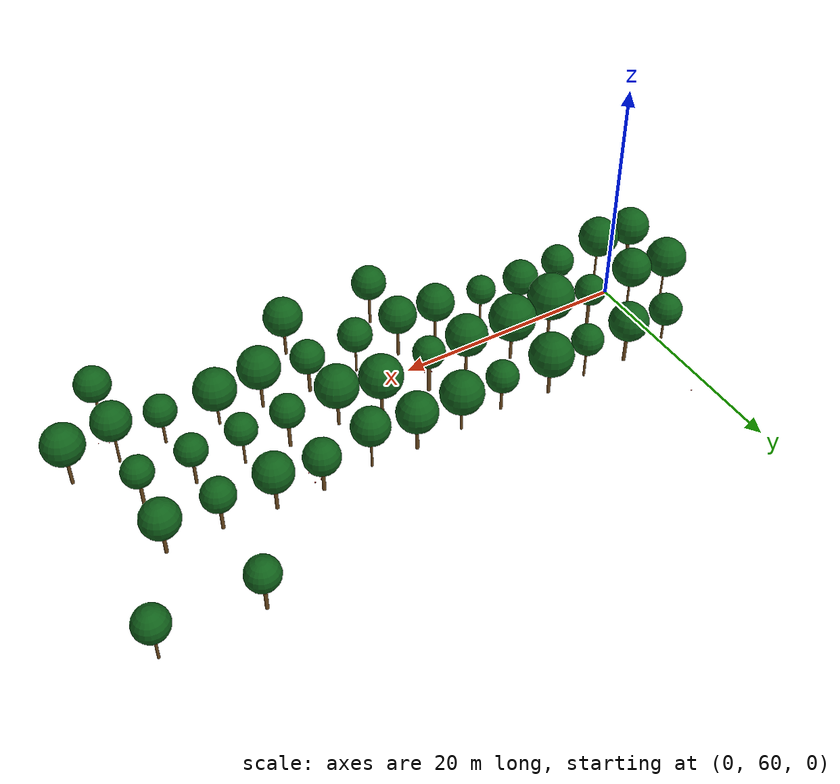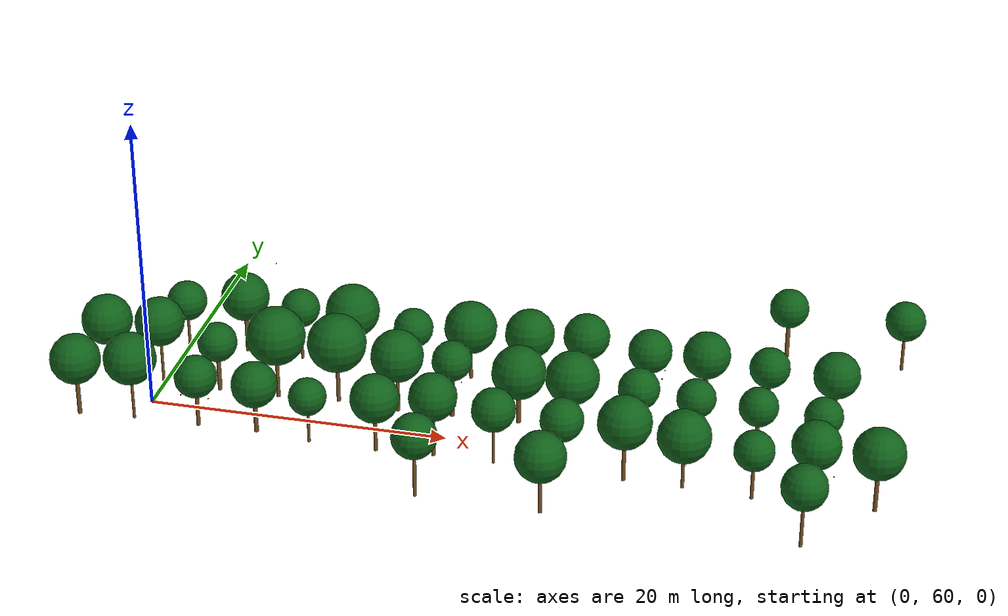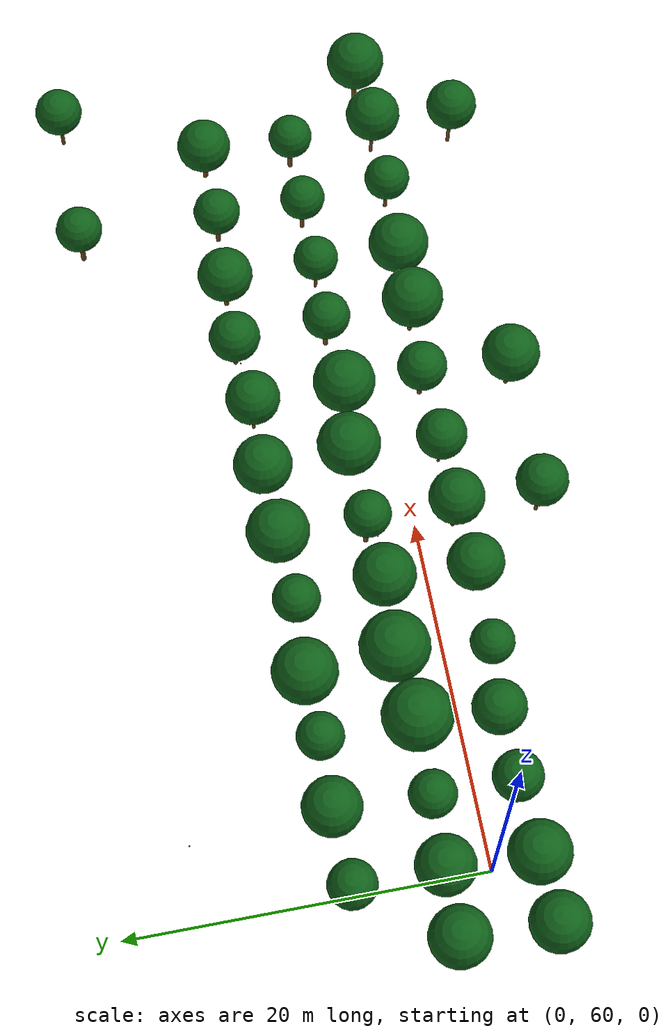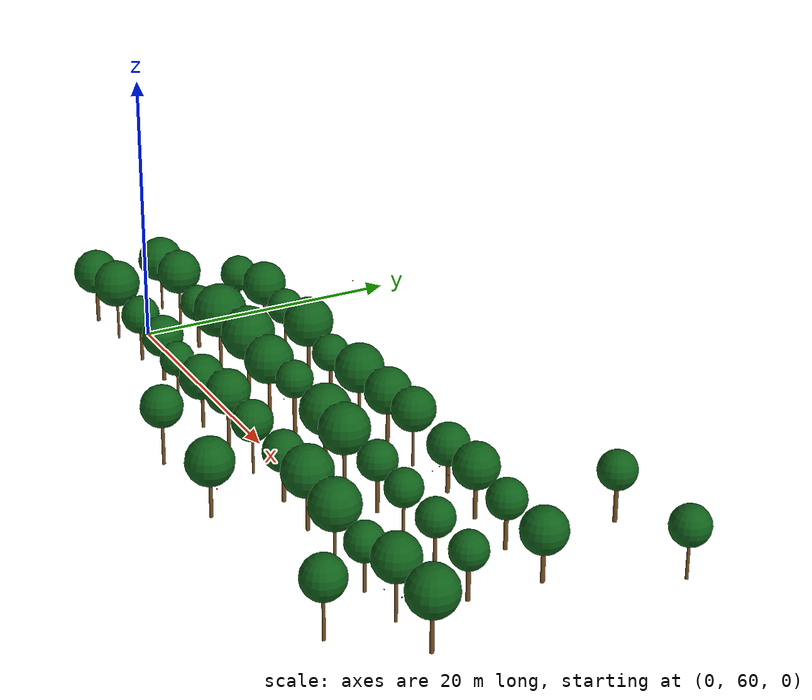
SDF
<sdf version="1.9">
 <world name="cheongsong_orchard">
  <model name="apple_tree_1778">
   <static>true</static>
   <pose>19.77 53.10 0 0 0 0</pose>
   <link name="link">
    <collision name="trunk_col">
     <pose>0 0 1.44 0 0 0</pose>
     <geometry><cylinder><radius>0.114</radius><length>2.87</length></cylinder></geometry>
    </collision>
    <visual name="trunk_vis">
     <pose>0 0 1.44 0 0 0</pose>
     <geometry><cylinder><radius>0.114</radius><length>2.87</length></cylinder></geometry>
     <material><ambient>0.35 0.22 0.08 1</ambient><diffuse>0.45 0.30 0.12 1</diffuse></material>
    </visual>
    <collision name="canopy_col">
     <pose>0 0 4.33 0 0 0</pose>
     <geometry><sphere><radius>1.46</radius></sphere></geometry>
    </collision>
    <visual name="canopy_vis">
     <pose>0 0 4.33 0 0 0</pose>
     <geometry><sphere><radius>1.46</radius></sphere></geometry>
     <material><ambient>0.04 0.28 0.06 1</ambient><diffuse>0.06 0.38 0.10 1</diffuse></material>
    </visual>
   </link>
  </model>
  <model name="apple_tree_1780">
   <static>true</static>
   <pose>27.69 53.07 0 0 0 0</pose>
   <link name="link">
    <collision name="trunk_col">
     <pose>0 0 1.19 0 0 0</pose>
     <geometry><cylinder><radius>0.125</radius><length>2.38</length></cylinder></geometry>
    </collision>
    <visual name="trunk_vis">
     <pose>0 0 1.19 0 0 0</pose>
     <geometry><cylinder><radius>0.125</radius><length>2.38</length></cylinder></geometry>
     <material><ambient>0.35 0.22 0.08 1</ambient><diffuse>0.45 0.30 0.12 1</diffuse></material>
    </visual>
    <collision name="canopy_col">
     <pose>0 0 4.01 0 0 0</pose>
     <geometry><sphere><radius>1.63</radius></sphere></geometry>
    </collision>
    <visual name="canopy_vis">
     <pose>0 0 4.01 0 0 0</pose>
     <geometry><sphere><radius>1.63</radius></sphere></geometry>
     <material><ambient>0.04 0.28 0.06 1</ambient><diffuse>0.06 0.38 0.10 1</diffuse></material>
    </visual>
   </link>
  </model>
  <model name="apple_tree_1784">
   <static>true</static>
   <pose>43.67 53.07 0 0 0 0</pose>
   <link name="link">
    <collision name="trunk_col">
     <pose>0 0 1.38 0 0 0</pose>
     <geometry><cylinder><radius>0.106</radius><length>2.76</length></cylinder></geometry>
    </collision>
    <visual name="trunk_vis">
     <pose>0 0 1.38 0 0 0</pose>
     <geometry><cylinder><radius>0.106</radius><length>2.76</length></cylinder></geometry>
     <material><ambient>0.35 0.22 0.08 1</ambient><diffuse>0.45 0.30 0.12 1</diffuse></material>
    </visual>
    <collision name="canopy_col">
     <pose>0 0 4.21 0 0 0</pose>
     <geometry><sphere><radius>1.44</radius></sphere></geometry>
    </collision>
    <visual name="canopy_vis">
     <pose>0 0 4.21 0 0 0</pose>
     <geometry><sphere><radius>1.44</radius></sphere></geometry>
     <material><ambient>0.04 0.28 0.06 1</ambient><diffuse>0.06 0.38 0.10 1</diffuse></material>
    </visual>
   </link>
  </model>
  <model name="apple_tree_1828">
   <static>true</static>
   <pose>-4.09 57.57 0 0 0 0</pose>
   <link name="link">
    <collision name="trunk_col">
     <pose>0 0 1.22 0 0 0</pose>
     <geometry><cylinder><radius>0.138</radius><length>2.43</length></cylinder></geometry>
    </collision>
    <visual name="trunk_vis">
     <pose>0 0 1.22 0 0 0</pose>
     <geometry><cylinder><radius>0.138</radius><length>2.43</length></cylinder></geometry>
     <material><ambient>0.35 0.22 0.08 1</ambient><diffuse>0.45 0.30 0.12 1</diffuse></material>
    </visual>
    <collision name="canopy_col">
     <pose>0 0 4.09 0 0 0</pose>
     <geometry><sphere><radius>1.66</radius></sphere></geometry>
    </collision>
    <visual name="canopy_vis">
     <pose>0 0 4.09 0 0 0</pose>
     <geometry><sphere><radius>1.66</radius></sphere></geometry>
     <material><ambient>0.04 0.28 0.06 1</ambient><diffuse>0.06 0.38 0.10 1</diffuse></material>
    </visual>
   </link>
  </model>
  <model name="apple_tree_1829">
   <static>true</static>
   <pose>-0.41 57.82 0 0 0 0</pose>
   <link name="link">
    <collision name="trunk_col">
     <pose>0 0 1.37 0 0 0</pose>
     <geometry><cylinder><radius>0.090</radius><length>2.74</length></cylinder></geometry>
    </collision>
    <visual name="trunk_vis">
     <pose>0 0 1.37 0 0 0</pose>
     <geometry><cylinder><radius>0.090</radius><length>2.74</length></cylinder></geometry>
     <material><ambient>0.35 0.22 0.08 1</ambient><diffuse>0.45 0.30 0.12 1</diffuse></material>
    </visual>
    <collision name="canopy_col">
     <pose>0 0 4.46 0 0 0</pose>
     <geometry><sphere><radius>1.73</radius></sphere></geometry>
    </collision>
    <visual name="canopy_vis">
     <pose>0 0 4.46 0 0 0</pose>
     <geometry><sphere><radius>1.73</radius></sphere></geometry>
     <material><ambient>0.04 0.28 0.06 1</ambient><diffuse>0.06 0.38 0.10 1</diffuse></material>
    </visual>
   </link>
  </model>
  <model name="apple_tree_1830">
   <static>true</static>
   <pose>3.96 57.94 0 0 0 0</pose>
   <link name="link">
    <collision name="trunk_col">
     <pose>0 0 1.11 0 0 0</pose>
     <geometry><cylinder><radius>0.123</radius><length>2.23</length></cylinder></geometry>
    </collision>
    <visual name="trunk_vis">
     <pose>0 0 1.11 0 0 0</pose>
     <geometry><cylinder><radius>0.123</radius><length>2.23</length></cylinder></geometry>
     <material><ambient>0.35 0.22 0.08 1</ambient><diffuse>0.45 0.30 0.12 1</diffuse></material>
    </visual>
    <collision name="canopy_col">
     <pose>0 0 3.63 0 0 0</pose>
     <geometry><sphere><radius>1.40</radius></sphere></geometry>
    </collision>
    <visual name="canopy_vis">
     <pose>0 0 3.63 0 0 0</pose>
     <geometry><sphere><radius>1.40</radius></sphere></geometry>
     <material><ambient>0.04 0.28 0.06 1</ambient><diffuse>0.06 0.38 0.10 1</diffuse></material>
    </visual>
   </link>
  </model>
  <model name="apple_tree_1831">
   <static>true</static>
   <pose>7.86 58.07 0 0 0 0</pose>
   <link name="link">
    <collision name="trunk_col">
     <pose>0 0 0.99 0 0 0</pose>
     <geometry><cylinder><radius>0.143</radius><length>1.98</length></cylinder></geometry>
    </collision>
    <visual name="trunk_vis">
     <pose>0 0 0.99 0 0 0</pose>
     <geometry><cylinder><radius>0.143</radius><length>1.98</length></cylinder></geometry>
     <material><ambient>0.35 0.22 0.08 1</ambient><diffuse>0.45 0.30 0.12 1</diffuse></material>
    </visual>
    <collision name="canopy_col">
     <pose>0 0 3.49 0 0 0</pose>
     <geometry><sphere><radius>1.51</radius></sphere></geometry>
    </collision>
    <visual name="canopy_vis">
     <pose>0 0 3.49 0 0 0</pose>
     <geometry><sphere><radius>1.51</radius></sphere></geometry>
     <material><ambient>0.04 0.28 0.06 1</ambient><diffuse>0.06 0.38 0.10 1</diffuse></material>
    </visual>
   </link>
  </model>
  <model name="apple_tree_1832">
   <static>true</static>
   <pose>11.54 57.63 0 0 0 0</pose>
   <link name="link">
    <collision name="trunk_col">
     <pose>0 0 1.06 0 0 0</pose>
     <geometry><cylinder><radius>0.090</radius><length>2.13</length></cylinder></geometry>
    </collision>
    <visual name="trunk_vis">
     <pose>0 0 1.06 0 0 0</pose>
     <geometry><cylinder><radius>0.090</radius><length>2.13</length></cylinder></geometry>
     <material><ambient>0.35 0.22 0.08 1</ambient><diffuse>0.45 0.30 0.12 1</diffuse></material>
    </visual>
    <collision name="canopy_col">
     <pose>0 0 3.35 0 0 0</pose>
     <geometry><sphere><radius>1.23</radius></sphere></geometry>
    </collision>
    <visual name="canopy_vis">
     <pose>0 0 3.35 0 0 0</pose>
     <geometry><sphere><radius>1.23</radius></sphere></geometry>
     <material><ambient>0.04 0.28 0.06 1</ambient><diffuse>0.06 0.38 0.10 1</diffuse></material>
    </visual>
   </link>
  </model>
  <model name="apple_tree_1833">
   <static>true</static>
   <pose>15.99 57.61 0 0 0 0</pose>
   <link name="link">
    <collision name="trunk_col">
     <pose>0 0 1.13 0 0 0</pose>
     <geometry><cylinder><radius>0.120</radius><length>2.26</length></cylinder></geometry>
    </collision>
    <visual name="trunk_vis">
     <pose>0 0 1.13 0 0 0</pose>
     <geometry><cylinder><radius>0.120</radius><length>2.26</length></cylinder></geometry>
     <material><ambient>0.35 0.22 0.08 1</ambient><diffuse>0.45 0.30 0.12 1</diffuse></material>
    </visual>
    <collision name="canopy_col">
     <pose>0 0 3.85 0 0 0</pose>
     <geometry><sphere><radius>1.59</radius></sphere></geometry>
    </collision>
    <visual name="canopy_vis">
     <pose>0 0 3.85 0 0 0</pose>
     <geometry><sphere><radius>1.59</radius></sphere></geometry>
     <material><ambient>0.04 0.28 0.06 1</ambient><diffuse>0.06 0.38 0.10 1</diffuse></material>
    </visual>
   </link>
  </model>
  <model name="apple_tree_1834">
   <static>true</static>
   <pose>19.72 57.89 0 0 0 0</pose>
   <link name="link">
    <collision name="trunk_col">
     <pose>0 0 1.37 0 0 0</pose>
     <geometry><cylinder><radius>0.120</radius><length>2.75</length></cylinder></geometry>
    </collision>
    <visual name="trunk_vis">
     <pose>0 0 1.37 0 0 0</pose>
     <geometry><cylinder><radius>0.120</radius><length>2.75</length></cylinder></geometry>
     <material><ambient>0.35 0.22 0.08 1</ambient><diffuse>0.45 0.30 0.12 1</diffuse></material>
    </visual>
    <collision name="canopy_col">
     <pose>0 0 4.31 0 0 0</pose>
     <geometry><sphere><radius>1.56</radius></sphere></geometry>
    </collision>
    <visual name="canopy_vis">
     <pose>0 0 4.31 0 0 0</pose>
     <geometry><sphere><radius>1.56</radius></sphere></geometry>
     <material><ambient>0.04 0.28 0.06 1</ambient><diffuse>0.06 0.38 0.10 1</diffuse></material>
    </visual>
   </link>
  </model>
  <model name="apple_tree_1835">
   <static>true</static>
   <pose>23.64 57.88 0 0 0 0</pose>
   <link name="link">
    <collision name="trunk_col">
     <pose>0 0 1.24 0 0 0</pose>
     <geometry><cylinder><radius>0.088</radius><length>2.48</length></cylinder></geometry>
    </collision>
    <visual name="trunk_vis">
     <pose>0 0 1.24 0 0 0</pose>
     <geometry><cylinder><radius>0.088</radius><length>2.48</length></cylinder></geometry>
     <material><ambient>0.35 0.22 0.08 1</ambient><diffuse>0.45 0.30 0.12 1</diffuse></material>
    </visual>
    <collision name="canopy_col">
     <pose>0 0 3.91 0 0 0</pose>
     <geometry><sphere><radius>1.42</radius></sphere></geometry>
    </collision>
    <visual name="canopy_vis">
     <pose>0 0 3.91 0 0 0</pose>
     <geometry><sphere><radius>1.42</radius></sphere></geometry>
     <material><ambient>0.04 0.28 0.06 1</ambient><diffuse>0.06 0.38 0.10 1</diffuse></material>
    </visual>
   </link>
  </model>
  <model name="apple_tree_1836">
   <static>true</static>
   <pose>27.97 58.06 0 0 0 0</pose>
   <link name="link">
    <collision name="trunk_col">
     <pose>0 0 1.14 0 0 0</pose>
     <geometry><cylinder><radius>0.142</radius><length>2.28</length></cylinder></geometry>
    </collision>
    <visual name="trunk_vis">
     <pose>0 0 1.14 0 0 0</pose>
     <geometry><cylinder><radius>0.142</radius><length>2.28</length></cylinder></geometry>
     <material><ambient>0.35 0.22 0.08 1</ambient><diffuse>0.45 0.30 0.12 1</diffuse></material>
    </visual>
    <collision name="canopy_col">
     <pose>0 0 3.68 0 0 0</pose>
     <geometry><sphere><radius>1.40</radius></sphere></geometry>
    </collision>
    <visual name="canopy_vis">
     <pose>0 0 3.68 0 0 0</pose>
     <geometry><sphere><radius>1.40</radius></sphere></geometry>
     <material><ambient>0.04 0.28 0.06 1</ambient><diffuse>0.06 0.38 0.10 1</diffuse></material>
    </visual>
   </link>
  </model>
  <model name="apple_tree_1837">
   <static>true</static>
   <pose>31.99 57.80 0 0 0 0</pose>
   <link name="link">
    <collision name="trunk_col">
     <pose>0 0 1.24 0 0 0</pose>
     <geometry><cylinder><radius>0.126</radius><length>2.49</length></cylinder></geometry>
    </collision>
    <visual name="trunk_vis">
     <pose>0 0 1.24 0 0 0</pose>
     <geometry><cylinder><radius>0.126</radius><length>2.49</length></cylinder></geometry>
     <material><ambient>0.35 0.22 0.08 1</ambient><diffuse>0.45 0.30 0.12 1</diffuse></material>
    </visual>
    <collision name="canopy_col">
     <pose>0 0 4.22 0 0 0</pose>
     <geometry><sphere><radius>1.73</radius></sphere></geometry>
    </collision>
    <visual name="canopy_vis">
     <pose>0 0 4.22 0 0 0</pose>
     <geometry><sphere><radius>1.73</radius></sphere></geometry>
     <material><ambient>0.04 0.28 0.06 1</ambient><diffuse>0.06 0.38 0.10 1</diffuse></material>
    </visual>
   </link>
  </model>
  <model name="apple_tree_1838">
   <static>true</static>
   <pose>35.72 57.82 0 0 0 0</pose>
   <link name="link">
    <collision name="trunk_col">
     <pose>0 0 1.01 0 0 0</pose>
     <geometry><cylinder><radius>0.106</radius><length>2.01</length></cylinder></geometry>
    </collision>
    <visual name="trunk_vis">
     <pose>0 0 1.01 0 0 0</pose>
     <geometry><cylinder><radius>0.106</radius><length>2.01</length></cylinder></geometry>
     <material><ambient>0.35 0.22 0.08 1</ambient><diffuse>0.45 0.30 0.12 1</diffuse></material>
    </visual>
    <collision name="canopy_col">
     <pose>0 0 3.73 0 0 0</pose>
     <geometry><sphere><radius>1.71</radius></sphere></geometry>
    </collision>
    <visual name="canopy_vis">
     <pose>0 0 3.73 0 0 0</pose>
     <geometry><sphere><radius>1.71</radius></sphere></geometry>
     <material><ambient>0.04 0.28 0.06 1</ambient><diffuse>0.06 0.38 0.10 1</diffuse></material>
    </visual>
   </link>
  </model>
  <model name="apple_tree_1839">
   <static>true</static>
   <pose>40.09 57.59 0 0 0 0</pose>
   <link name="link">
    <collision name="trunk_col">
     <pose>0 0 1.09 0 0 0</pose>
     <geometry><cylinder><radius>0.112</radius><length>2.17</length></cylinder></geometry>
    </collision>
    <visual name="trunk_vis">
     <pose>0 0 1.09 0 0 0</pose>
     <geometry><cylinder><radius>0.112</radius><length>2.17</length></cylinder></geometry>
     <material><ambient>0.35 0.22 0.08 1</ambient><diffuse>0.45 0.30 0.12 1</diffuse></material>
    </visual>
    <collision name="canopy_col">
     <pose>0 0 3.46 0 0 0</pose>
     <geometry><sphere><radius>1.29</radius></sphere></geometry>
    </collision>
    <visual name="canopy_vis">
     <pose>0 0 3.46 0 0 0</pose>
     <geometry><sphere><radius>1.29</radius></sphere></geometry>
     <material><ambient>0.04 0.28 0.06 1</ambient><diffuse>0.06 0.38 0.10 1</diffuse></material>
    </visual>
   </link>
  </model>
  <model name="apple_tree_1840">
   <static>true</static>
   <pose>43.84 57.69 0 0 0 0</pose>
   <link name="link">
    <collision name="trunk_col">
     <pose>0 0 1.40 0 0 0</pose>
     <geometry><cylinder><radius>0.101</radius><length>2.80</length></cylinder></geometry>
    </collision>
    <visual name="trunk_vis">
     <pose>0 0 1.40 0 0 0</pose>
     <geometry><cylinder><radius>0.101</radius><length>2.80</length></cylinder></geometry>
     <material><ambient>0.35 0.22 0.08 1</ambient><diffuse>0.45 0.30 0.12 1</diffuse></material>
    </visual>
    <collision name="canopy_col">
     <pose>0 0 4.35 0 0 0</pose>
     <geometry><sphere><radius>1.55</radius></sphere></geometry>
    </collision>
    <visual name="canopy_vis">
     <pose>0 0 4.35 0 0 0</pose>
     <geometry><sphere><radius>1.55</radius></sphere></geometry>
     <material><ambient>0.04 0.28 0.06 1</ambient><diffuse>0.06 0.38 0.10 1</diffuse></material>
    </visual>
   </link>
  </model>
  <model name="apple_tree_1841">
   <static>true</static>
   <pose>47.63 57.96 0 0 0 0</pose>
   <link name="link">
    <collision name="trunk_col">
     <pose>0 0 1.23 0 0 0</pose>
     <geometry><cylinder><radius>0.135</radius><length>2.46</length></cylinder></geometry>
    </collision>
    <visual name="trunk_vis">
     <pose>0 0 1.23 0 0 0</pose>
     <geometry><cylinder><radius>0.135</radius><length>2.46</length></cylinder></geometry>
     <material><ambient>0.35 0.22 0.08 1</ambient><diffuse>0.45 0.30 0.12 1</diffuse></material>
    </visual>
    <collision name="canopy_col">
     <pose>0 0 4.11 0 0 0</pose>
     <geometry><sphere><radius>1.65</radius></sphere></geometry>
    </collision>
    <visual name="canopy_vis">
     <pose>0 0 4.11 0 0 0</pose>
     <geometry><sphere><radius>1.65</radius></sphere></geometry>
     <material><ambient>0.04 0.28 0.06 1</ambient><diffuse>0.06 0.38 0.10 1</diffuse></material>
    </visual>
   </link>
  </model>
  <model name="apple_tree_1884">
   <static>true</static>
   <pose>-3.90 62.79 0 0 0 0</pose>
   <link name="link">
    <collision name="trunk_col">
     <pose>0 0 1.25 0 0 0</pose>
     <geometry><cylinder><radius>0.084</radius><length>2.51</length></cylinder></geometry>
    </collision>
    <visual name="trunk_vis">
     <pose>0 0 1.25 0 0 0</pose>
     <geometry><cylinder><radius>0.084</radius><length>2.51</length></cylinder></geometry>
     <material><ambient>0.35 0.22 0.08 1</ambient><diffuse>0.45 0.30 0.12 1</diffuse></material>
    </visual>
    <collision name="canopy_col">
     <pose>0 0 4.20 0 0 0</pose>
     <geometry><sphere><radius>1.70</radius></sphere></geometry>
    </collision>
    <visual name="canopy_vis">
     <pose>0 0 4.20 0 0 0</pose>
     <geometry><sphere><radius>1.70</radius></sphere></geometry>
     <material><ambient>0.04 0.28 0.06 1</ambient><diffuse>0.06 0.38 0.10 1</diffuse></material>
    </visual>
   </link>
  </model>
  <model name="apple_tree_1885">
   <static>true</static>
   <pose>-0.19 62.77 0 0 0 0</pose>
   <link name="link">
    <collision name="trunk_col">
     <pose>0 0 1.44 0 0 0</pose>
     <geometry><cylinder><radius>0.092</radius><length>2.88</length></cylinder></geometry>
    </collision>
    <visual name="trunk_vis">
     <pose>0 0 1.44 0 0 0</pose>
     <geometry><cylinder><radius>0.092</radius><length>2.88</length></cylinder></geometry>
     <material><ambient>0.35 0.22 0.08 1</ambient><diffuse>0.45 0.30 0.12 1</diffuse></material>
    </visual>
    <collision name="canopy_col">
     <pose>0 0 4.53 0 0 0</pose>
     <geometry><sphere><radius>1.65</radius></sphere></geometry>
    </collision>
    <visual name="canopy_vis">
     <pose>0 0 4.53 0 0 0</pose>
     <geometry><sphere><radius>1.65</radius></sphere></geometry>
     <material><ambient>0.04 0.28 0.06 1</ambient><diffuse>0.06 0.38 0.10 1</diffuse></material>
    </visual>
   </link>
  </model>
  <model name="apple_tree_1886">
   <static>true</static>
   <pose>3.85 62.55 0 0 0 0</pose>
   <link name="link">
    <collision name="trunk_col">
     <pose>0 0 1.14 0 0 0</pose>
     <geometry><cylinder><radius>0.141</radius><length>2.29</length></cylinder></geometry>
    </collision>
    <visual name="trunk_vis">
     <pose>0 0 1.14 0 0 0</pose>
     <geometry><cylinder><radius>0.141</radius><length>2.29</length></cylinder></geometry>
     <material><ambient>0.35 0.22 0.08 1</ambient><diffuse>0.45 0.30 0.12 1</diffuse></material>
    </visual>
    <collision name="canopy_col">
     <pose>0 0 3.61 0 0 0</pose>
     <geometry><sphere><radius>1.32</radius></sphere></geometry>
    </collision>
    <visual name="canopy_vis">
     <pose>0 0 3.61 0 0 0</pose>
     <geometry><sphere><radius>1.32</radius></sphere></geometry>
     <material><ambient>0.04 0.28 0.06 1</ambient><diffuse>0.06 0.38 0.10 1</diffuse></material>
    </visual>
   </link>
  </model>
  <model name="apple_tree_1887">
   <static>true</static>
   <pose>7.92 62.55 0 0 0 0</pose>
   <link name="link">
    <collision name="trunk_col">
     <pose>0 0 1.33 0 0 0</pose>
     <geometry><cylinder><radius>0.120</radius><length>2.65</length></cylinder></geometry>
    </collision>
    <visual name="trunk_vis">
     <pose>0 0 1.33 0 0 0</pose>
     <geometry><cylinder><radius>0.120</radius><length>2.65</length></cylinder></geometry>
     <material><ambient>0.35 0.22 0.08 1</ambient><diffuse>0.45 0.30 0.12 1</diffuse></material>
    </visual>
    <collision name="canopy_col">
     <pose>0 0 4.61 0 0 0</pose>
     <geometry><sphere><radius>1.96</radius></sphere></geometry>
    </collision>
    <visual name="canopy_vis">
     <pose>0 0 4.61 0 0 0</pose>
     <geometry><sphere><radius>1.96</radius></sphere></geometry>
     <material><ambient>0.04 0.28 0.06 1</ambient><diffuse>0.06 0.38 0.10 1</diffuse></material>
    </visual>
   </link>
  </model>
  <model name="apple_tree_1888">
   <static>true</static>
   <pose>11.95 62.94 0 0 0 0</pose>
   <link name="link">
    <collision name="trunk_col">
     <pose>0 0 1.21 0 0 0</pose>
     <geometry><cylinder><radius>0.129</radius><length>2.43</length></cylinder></geometry>
    </collision>
    <visual name="trunk_vis">
     <pose>0 0 1.21 0 0 0</pose>
     <geometry><cylinder><radius>0.129</radius><length>2.43</length></cylinder></geometry>
     <material><ambient>0.35 0.22 0.08 1</ambient><diffuse>0.45 0.30 0.12 1</diffuse></material>
    </visual>
    <collision name="canopy_col">
     <pose>0 0 4.38 0 0 0</pose>
     <geometry><sphere><radius>1.95</radius></sphere></geometry>
    </collision>
    <visual name="canopy_vis">
     <pose>0 0 4.38 0 0 0</pose>
     <geometry><sphere><radius>1.95</radius></sphere></geometry>
     <material><ambient>0.04 0.28 0.06 1</ambient><diffuse>0.06 0.38 0.10 1</diffuse></material>
    </visual>
   </link>
  </model>
  <model name="apple_tree_1889">
   <static>true</static>
   <pose>16.10 62.64 0 0 0 0</pose>
   <link name="link">
    <collision name="trunk_col">
     <pose>0 0 1.20 0 0 0</pose>
     <geometry><cylinder><radius>0.118</radius><length>2.39</length></cylinder></geometry>
    </collision>
    <visual name="trunk_vis">
     <pose>0 0 1.20 0 0 0</pose>
     <geometry><cylinder><radius>0.118</radius><length>2.39</length></cylinder></geometry>
     <material><ambient>0.35 0.22 0.08 1</ambient><diffuse>0.45 0.30 0.12 1</diffuse></material>
    </visual>
    <collision name="canopy_col">
     <pose>0 0 4.13 0 0 0</pose>
     <geometry><sphere><radius>1.74</radius></sphere></geometry>
    </collision>
    <visual name="canopy_vis">
     <pose>0 0 4.13 0 0 0</pose>
     <geometry><sphere><radius>1.74</radius></sphere></geometry>
     <material><ambient>0.04 0.28 0.06 1</ambient><diffuse>0.06 0.38 0.10 1</diffuse></material>
    </visual>
   </link>
  </model>
  <model name="apple_tree_1890">
   <static>true</static>
   <pose>19.71 62.85 0 0 0 0</pose>
   <link name="link">
    <collision name="trunk_col">
     <pose>0 0 1.40 0 0 0</pose>
     <geometry><cylinder><radius>0.146</radius><length>2.80</length></cylinder></geometry>
    </collision>
    <visual name="trunk_vis">
     <pose>0 0 1.40 0 0 0</pose>
     <geometry><cylinder><radius>0.146</radius><length>2.80</length></cylinder></geometry>
     <material><ambient>0.35 0.22 0.08 1</ambient><diffuse>0.45 0.30 0.12 1</diffuse></material>
    </visual>
    <collision name="canopy_col">
     <pose>0 0 4.12 0 0 0</pose>
     <geometry><sphere><radius>1.32</radius></sphere></geometry>
    </collision>
    <visual name="canopy_vis">
     <pose>0 0 4.12 0 0 0</pose>
     <geometry><sphere><radius>1.32</radius></sphere></geometry>
     <material><ambient>0.04 0.28 0.06 1</ambient><diffuse>0.06 0.38 0.10 1</diffuse></material>
    </visual>
   </link>
  </model>
  <model name="apple_tree_1891">
   <static>true</static>
   <pose>24.10 63.01 0 0 0 0</pose>
   <link name="link">
    <collision name="trunk_col">
     <pose>0 0 0.99 0 0 0</pose>
     <geometry><cylinder><radius>0.145</radius><length>1.98</length></cylinder></geometry>
    </collision>
    <visual name="trunk_vis">
     <pose>0 0 0.99 0 0 0</pose>
     <geometry><cylinder><radius>0.145</radius><length>1.98</length></cylinder></geometry>
     <material><ambient>0.35 0.22 0.08 1</ambient><diffuse>0.45 0.30 0.12 1</diffuse></material>
    </visual>
    <collision name="canopy_col">
     <pose>0 0 3.76 0 0 0</pose>
     <geometry><sphere><radius>1.78</radius></sphere></geometry>
    </collision>
    <visual name="canopy_vis">
     <pose>0 0 3.76 0 0 0</pose>
     <geometry><sphere><radius>1.78</radius></sphere></geometry>
     <material><ambient>0.04 0.28 0.06 1</ambient><diffuse>0.06 0.38 0.10 1</diffuse></material>
    </visual>
   </link>
  </model>
  <model name="apple_tree_1892">
   <static>true</static>
   <pose>27.71 62.57 0 0 0 0</pose>
   <link name="link">
    <collision name="trunk_col">
     <pose>0 0 1.17 0 0 0</pose>
     <geometry><cylinder><radius>0.129</radius><length>2.34</length></cylinder></geometry>
    </collision>
    <visual name="trunk_vis">
     <pose>0 0 1.17 0 0 0</pose>
     <geometry><cylinder><radius>0.129</radius><length>2.34</length></cylinder></geometry>
     <material><ambient>0.35 0.22 0.08 1</ambient><diffuse>0.45 0.30 0.12 1</diffuse></material>
    </visual>
    <collision name="canopy_col">
     <pose>0 0 4.09 0 0 0</pose>
     <geometry><sphere><radius>1.75</radius></sphere></geometry>
    </collision>
    <visual name="canopy_vis">
     <pose>0 0 4.09 0 0 0</pose>
     <geometry><sphere><radius>1.75</radius></sphere></geometry>
     <material><ambient>0.04 0.28 0.06 1</ambient><diffuse>0.06 0.38 0.10 1</diffuse></material>
    </visual>
   </link>
  </model>
  <model name="apple_tree_1893">
   <static>true</static>
   <pose>31.99 62.74 0 0 0 0</pose>
   <link name="link">
    <collision name="trunk_col">
     <pose>0 0 1.21 0 0 0</pose>
     <geometry><cylinder><radius>0.139</radius><length>2.41</length></cylinder></geometry>
    </collision>
    <visual name="trunk_vis">
     <pose>0 0 1.21 0 0 0</pose>
     <geometry><cylinder><radius>0.139</radius><length>2.41</length></cylinder></geometry>
     <material><ambient>0.35 0.22 0.08 1</ambient><diffuse>0.45 0.30 0.12 1</diffuse></material>
    </visual>
    <collision name="canopy_col">
     <pose>0 0 3.76 0 0 0</pose>
     <geometry><sphere><radius>1.35</radius></sphere></geometry>
    </collision>
    <visual name="canopy_vis">
     <pose>0 0 3.76 0 0 0</pose>
     <geometry><sphere><radius>1.35</radius></sphere></geometry>
     <material><ambient>0.04 0.28 0.06 1</ambient><diffuse>0.06 0.38 0.10 1</diffuse></material>
    </visual>
   </link>
  </model>
  <model name="apple_tree_1894">
   <static>true</static>
   <pose>35.70 62.62 0 0 0 0</pose>
   <link name="link">
    <collision name="trunk_col">
     <pose>0 0 1.18 0 0 0</pose>
     <geometry><cylinder><radius>0.098</radius><length>2.37</length></cylinder></geometry>
    </collision>
    <visual name="trunk_vis">
     <pose>0 0 1.18 0 0 0</pose>
     <geometry><cylinder><radius>0.098</radius><length>2.37</length></cylinder></geometry>
     <material><ambient>0.35 0.22 0.08 1</ambient><diffuse>0.45 0.30 0.12 1</diffuse></material>
    </visual>
    <collision name="canopy_col">
     <pose>0 0 3.64 0 0 0</pose>
     <geometry><sphere><radius>1.27</radius></sphere></geometry>
    </collision>
    <visual name="canopy_vis">
     <pose>0 0 3.64 0 0 0</pose>
     <geometry><sphere><radius>1.27</radius></sphere></geometry>
     <material><ambient>0.04 0.28 0.06 1</ambient><diffuse>0.06 0.38 0.10 1</diffuse></material>
    </visual>
   </link>
  </model>
  <model name="apple_tree_1895">
   <static>true</static>
   <pose>39.67 62.63 0 0 0 0</pose>
   <link name="link">
    <collision name="trunk_col">
     <pose>0 0 1.15 0 0 0</pose>
     <geometry><cylinder><radius>0.125</radius><length>2.29</length></cylinder></geometry>
    </collision>
    <visual name="trunk_vis">
     <pose>0 0 1.15 0 0 0</pose>
     <geometry><cylinder><radius>0.125</radius><length>2.29</length></cylinder></geometry>
     <material><ambient>0.35 0.22 0.08 1</ambient><diffuse>0.45 0.30 0.12 1</diffuse></material>
    </visual>
    <collision name="canopy_col">
     <pose>0 0 3.56 0 0 0</pose>
     <geometry><sphere><radius>1.27</radius></sphere></geometry>
    </collision>
    <visual name="canopy_vis">
     <pose>0 0 3.56 0 0 0</pose>
     <geometry><sphere><radius>1.27</radius></sphere></geometry>
     <material><ambient>0.04 0.28 0.06 1</ambient><diffuse>0.06 0.38 0.10 1</diffuse></material>
    </visual>
   </link>
  </model>
  <model name="apple_tree_1896">
   <static>true</static>
   <pose>43.78 62.57 0 0 0 0</pose>
   <link name="link">
    <collision name="trunk_col">
     <pose>0 0 1.10 0 0 0</pose>
     <geometry><cylinder><radius>0.142</radius><length>2.20</length></cylinder></geometry>
    </collision>
    <visual name="trunk_vis">
     <pose>0 0 1.10 0 0 0</pose>
     <geometry><cylinder><radius>0.142</radius><length>2.20</length></cylinder></geometry>
     <material><ambient>0.35 0.22 0.08 1</ambient><diffuse>0.45 0.30 0.12 1</diffuse></material>
    </visual>
    <collision name="canopy_col">
     <pose>0 0 3.45 0 0 0</pose>
     <geometry><sphere><radius>1.25</radius></sphere></geometry>
    </collision>
    <visual name="canopy_vis">
     <pose>0 0 3.45 0 0 0</pose>
     <geometry><sphere><radius>1.25</radius></sphere></geometry>
     <material><ambient>0.04 0.28 0.06 1</ambient><diffuse>0.06 0.38 0.10 1</diffuse></material>
    </visual>
   </link>
  </model>
  <model name="apple_tree_1942">
   <static>true</static>
   <pose>-0.06 67.63 0 0 0 0</pose>
   <link name="link">
    <collision name="trunk_col">
     <pose>0 0 1.08 0 0 0</pose>
     <geometry><cylinder><radius>0.093</radius><length>2.16</length></cylinder></geometry>
    </collision>
    <visual name="trunk_vis">
     <pose>0 0 1.08 0 0 0</pose>
     <geometry><cylinder><radius>0.093</radius><length>2.16</length></cylinder></geometry>
     <material><ambient>0.35 0.22 0.08 1</ambient><diffuse>0.45 0.30 0.12 1</diffuse></material>
    </visual>
    <collision name="canopy_col">
     <pose>0 0 3.52 0 0 0</pose>
     <geometry><sphere><radius>1.36</radius></sphere></geometry>
    </collision>
    <visual name="canopy_vis">
     <pose>0 0 3.52 0 0 0</pose>
     <geometry><sphere><radius>1.36</radius></sphere></geometry>
     <material><ambient>0.04 0.28 0.06 1</ambient><diffuse>0.06 0.38 0.10 1</diffuse></material>
    </visual>
   </link>
  </model>
  <model name="apple_tree_1943">
   <static>true</static>
   <pose>4.03 67.91 0 0 0 0</pose>
   <link name="link">
    <collision name="trunk_col">
     <pose>0 0 1.28 0 0 0</pose>
     <geometry><cylinder><radius>0.143</radius><length>2.55</length></cylinder></geometry>
    </collision>
    <visual name="trunk_vis">
     <pose>0 0 1.28 0 0 0</pose>
     <geometry><cylinder><radius>0.143</radius><length>2.55</length></cylinder></geometry>
     <material><ambient>0.35 0.22 0.08 1</ambient><diffuse>0.45 0.30 0.12 1</diffuse></material>
    </visual>
    <collision name="canopy_col">
     <pose>0 0 4.19 0 0 0</pose>
     <geometry><sphere><radius>1.64</radius></sphere></geometry>
    </collision>
    <visual name="canopy_vis">
     <pose>0 0 4.19 0 0 0</pose>
     <geometry><sphere><radius>1.64</radius></sphere></geometry>
     <material><ambient>0.04 0.28 0.06 1</ambient><diffuse>0.06 0.38 0.10 1</diffuse></material>
    </visual>
   </link>
  </model>
  <model name="apple_tree_1944">
   <static>true</static>
   <pose>7.97 67.76 0 0 0 0</pose>
   <link name="link">
    <collision name="trunk_col">
     <pose>0 0 1.29 0 0 0</pose>
     <geometry><cylinder><radius>0.095</radius><length>2.58</length></cylinder></geometry>
    </collision>
    <visual name="trunk_vis">
     <pose>0 0 1.29 0 0 0</pose>
     <geometry><cylinder><radius>0.095</radius><length>2.58</length></cylinder></geometry>
     <material><ambient>0.35 0.22 0.08 1</ambient><diffuse>0.45 0.30 0.12 1</diffuse></material>
    </visual>
    <collision name="canopy_col">
     <pose>0 0 3.89 0 0 0</pose>
     <geometry><sphere><radius>1.31</radius></sphere></geometry>
    </collision>
    <visual name="canopy_vis">
     <pose>0 0 3.89 0 0 0</pose>
     <geometry><sphere><radius>1.31</radius></sphere></geometry>
     <material><ambient>0.04 0.28 0.06 1</ambient><diffuse>0.06 0.38 0.10 1</diffuse></material>
    </visual>
   </link>
  </model>
  <model name="apple_tree_1945">
   <static>true</static>
   <pose>11.58 67.90 0 0 0 0</pose>
   <link name="link">
    <collision name="trunk_col">
     <pose>0 0 1.12 0 0 0</pose>
     <geometry><cylinder><radius>0.138</radius><length>2.24</length></cylinder></geometry>
    </collision>
    <visual name="trunk_vis">
     <pose>0 0 1.12 0 0 0</pose>
     <geometry><cylinder><radius>0.138</radius><length>2.24</length></cylinder></geometry>
     <material><ambient>0.35 0.22 0.08 1</ambient><diffuse>0.45 0.30 0.12 1</diffuse></material>
    </visual>
    <collision name="canopy_col">
     <pose>0 0 4.06 0 0 0</pose>
     <geometry><sphere><radius>1.82</radius></sphere></geometry>
    </collision>
    <visual name="canopy_vis">
     <pose>0 0 4.06 0 0 0</pose>
     <geometry><sphere><radius>1.82</radius></sphere></geometry>
     <material><ambient>0.04 0.28 0.06 1</ambient><diffuse>0.06 0.38 0.10 1</diffuse></material>
    </visual>
   </link>
  </model>
  <model name="apple_tree_1946">
   <static>true</static>
   <pose>15.88 67.54 0 0 0 0</pose>
   <link name="link">
    <collision name="trunk_col">
     <pose>0 0 1.08 0 0 0</pose>
     <geometry><cylinder><radius>0.119</radius><length>2.16</length></cylinder></geometry>
    </collision>
    <visual name="trunk_vis">
     <pose>0 0 1.08 0 0 0</pose>
     <geometry><cylinder><radius>0.119</radius><length>2.16</length></cylinder></geometry>
     <material><ambient>0.35 0.22 0.08 1</ambient><diffuse>0.45 0.30 0.12 1</diffuse></material>
    </visual>
    <collision name="canopy_col">
     <pose>0 0 3.49 0 0 0</pose>
     <geometry><sphere><radius>1.33</radius></sphere></geometry>
    </collision>
    <visual name="canopy_vis">
     <pose>0 0 3.49 0 0 0</pose>
     <geometry><sphere><radius>1.33</radius></sphere></geometry>
     <material><ambient>0.04 0.28 0.06 1</ambient><diffuse>0.06 0.38 0.10 1</diffuse></material>
    </visual>
   </link>
  </model>
  <model name="apple_tree_1947">
   <static>true</static>
   <pose>19.74 67.82 0 0 0 0</pose>
   <link name="link">
    <collision name="trunk_col">
     <pose>0 0 1.06 0 0 0</pose>
     <geometry><cylinder><radius>0.111</radius><length>2.13</length></cylinder></geometry>
    </collision>
    <visual name="trunk_vis">
     <pose>0 0 1.06 0 0 0</pose>
     <geometry><cylinder><radius>0.111</radius><length>2.13</length></cylinder></geometry>
     <material><ambient>0.35 0.22 0.08 1</ambient><diffuse>0.45 0.30 0.12 1</diffuse></material>
    </visual>
    <collision name="canopy_col">
     <pose>0 0 3.88 0 0 0</pose>
     <geometry><sphere><radius>1.76</radius></sphere></geometry>
    </collision>
    <visual name="canopy_vis">
     <pose>0 0 3.88 0 0 0</pose>
     <geometry><sphere><radius>1.76</radius></sphere></geometry>
     <material><ambient>0.04 0.28 0.06 1</ambient><diffuse>0.06 0.38 0.10 1</diffuse></material>
    </visual>
   </link>
  </model>
  <model name="apple_tree_1948">
   <static>true</static>
   <pose>23.74 67.91 0 0 0 0</pose>
   <link name="link">
    <collision name="trunk_col">
     <pose>0 0 1.11 0 0 0</pose>
     <geometry><cylinder><radius>0.132</radius><length>2.22</length></cylinder></geometry>
    </collision>
    <visual name="trunk_vis">
     <pose>0 0 1.11 0 0 0</pose>
     <geometry><cylinder><radius>0.132</radius><length>2.22</length></cylinder></geometry>
     <material><ambient>0.35 0.22 0.08 1</ambient><diffuse>0.45 0.30 0.12 1</diffuse></material>
    </visual>
    <collision name="canopy_col">
     <pose>0 0 3.87 0 0 0</pose>
     <geometry><sphere><radius>1.65</radius></sphere></geometry>
    </collision>
    <visual name="canopy_vis">
     <pose>0 0 3.87 0 0 0</pose>
     <geometry><sphere><radius>1.65</radius></sphere></geometry>
     <material><ambient>0.04 0.28 0.06 1</ambient><diffuse>0.06 0.38 0.10 1</diffuse></material>
    </visual>
   </link>
  </model>
  <model name="apple_tree_1949">
   <static>true</static>
   <pose>27.60 67.75 0 0 0 0</pose>
   <link name="link">
    <collision name="trunk_col">
     <pose>0 0 1.36 0 0 0</pose>
     <geometry><cylinder><radius>0.094</radius><length>2.71</length></cylinder></geometry>
    </collision>
    <visual name="trunk_vis">
     <pose>0 0 1.36 0 0 0</pose>
     <geometry><cylinder><radius>0.094</radius><length>2.71</length></cylinder></geometry>
     <material><ambient>0.35 0.22 0.08 1</ambient><diffuse>0.45 0.30 0.12 1</diffuse></material>
    </visual>
    <collision name="canopy_col">
     <pose>0 0 4.24 0 0 0</pose>
     <geometry><sphere><radius>1.53</radius></sphere></geometry>
    </collision>
    <visual name="canopy_vis">
     <pose>0 0 4.24 0 0 0</pose>
     <geometry><sphere><radius>1.53</radius></sphere></geometry>
     <material><ambient>0.04 0.28 0.06 1</ambient><diffuse>0.06 0.38 0.10 1</diffuse></material>
    </visual>
   </link>
  </model>
  <model name="apple_tree_1950">
   <static>true</static>
   <pose>31.79 68.03 0 0 0 0</pose>
   <link name="link">
    <collision name="trunk_col">
     <pose>0 0 1.04 0 0 0</pose>
     <geometry><cylinder><radius>0.145</radius><length>2.08</length></cylinder></geometry>
    </collision>
    <visual name="trunk_vis">
     <pose>0 0 1.04 0 0 0</pose>
     <geometry><cylinder><radius>0.145</radius><length>2.08</length></cylinder></geometry>
     <material><ambient>0.35 0.22 0.08 1</ambient><diffuse>0.45 0.30 0.12 1</diffuse></material>
    </visual>
    <collision name="canopy_col">
     <pose>0 0 3.53 0 0 0</pose>
     <geometry><sphere><radius>1.45</radius></sphere></geometry>
    </collision>
    <visual name="canopy_vis">
     <pose>0 0 3.53 0 0 0</pose>
     <geometry><sphere><radius>1.45</radius></sphere></geometry>
     <material><ambient>0.04 0.28 0.06 1</ambient><diffuse>0.06 0.38 0.10 1</diffuse></material>
    </visual>
   </link>
  </model>
  <model name="apple_tree_1951">
   <static>true</static>
   <pose>35.55 67.88 0 0 0 0</pose>
   <link name="link">
    <collision name="trunk_col">
     <pose>0 0 1.13 0 0 0</pose>
     <geometry><cylinder><radius>0.143</radius><length>2.26</length></cylinder></geometry>
    </collision>
    <visual name="trunk_vis">
     <pose>0 0 1.13 0 0 0</pose>
     <geometry><cylinder><radius>0.143</radius><length>2.26</length></cylinder></geometry>
     <material><ambient>0.35 0.22 0.08 1</ambient><diffuse>0.45 0.30 0.12 1</diffuse></material>
    </visual>
    <collision name="canopy_col">
     <pose>0 0 3.81 0 0 0</pose>
     <geometry><sphere><radius>1.56</radius></sphere></geometry>
    </collision>
    <visual name="canopy_vis">
     <pose>0 0 3.81 0 0 0</pose>
     <geometry><sphere><radius>1.56</radius></sphere></geometry>
     <material><ambient>0.04 0.28 0.06 1</ambient><diffuse>0.06 0.38 0.10 1</diffuse></material>
    </visual>
   </link>
  </model>
  <model name="apple_tree_1952">
   <static>true</static>
   <pose>39.71 67.62 0 0 0 0</pose>
   <link name="link">
    <collision name="trunk_col">
     <pose>0 0 1.12 0 0 0</pose>
     <geometry><cylinder><radius>0.136</radius><length>2.25</length></cylinder></geometry>
    </collision>
    <visual name="trunk_vis">
     <pose>0 0 1.12 0 0 0</pose>
     <geometry><cylinder><radius>0.136</radius><length>2.25</length></cylinder></geometry>
     <material><ambient>0.35 0.22 0.08 1</ambient><diffuse>0.45 0.30 0.12 1</diffuse></material>
    </visual>
    <collision name="canopy_col">
     <pose>0 0 3.57 0 0 0</pose>
     <geometry><sphere><radius>1.33</radius></sphere></geometry>
    </collision>
    <visual name="canopy_vis">
     <pose>0 0 3.57 0 0 0</pose>
     <geometry><sphere><radius>1.33</radius></sphere></geometry>
     <material><ambient>0.04 0.28 0.06 1</ambient><diffuse>0.06 0.38 0.10 1</diffuse></material>
    </visual>
   </link>
  </model>
  <model name="apple_tree_1953">
   <static>true</static>
   <pose>44.04 67.61 0 0 0 0</pose>
   <link name="link">
    <collision name="trunk_col">
     <pose>0 0 1.03 0 0 0</pose>
     <geometry><cylinder><radius>0.144</radius><length>2.07</length></cylinder></geometry>
    </collision>
    <visual name="trunk_vis">
     <pose>0 0 1.03 0 0 0</pose>
     <geometry><cylinder><radius>0.144</radius><length>2.07</length></cylinder></geometry>
     <material><ambient>0.35 0.22 0.08 1</ambient><diffuse>0.45 0.30 0.12 1</diffuse></material>
    </visual>
    <collision name="canopy_col">
     <pose>0 0 3.59 0 0 0</pose>
     <geometry><sphere><radius>1.53</radius></sphere></geometry>
    </collision>
    <visual name="canopy_vis">
     <pose>0 0 3.59 0 0 0</pose>
     <geometry><sphere><radius>1.53</radius></sphere></geometry>
     <material><ambient>0.04 0.28 0.06 1</ambient><diffuse>0.06 0.38 0.10 1</diffuse></material>
    </visual>
   </link>
  </model>
  <model name="apple_tree_2009">
   <static>true</static>
   <pose>39.97 75.56 0 0 0 0</pose>
   <link name="link">
    <collision name="trunk_col">
     <pose>0 0 1.20 0 0 0</pose>
     <geometry><cylinder><radius>0.144</radius><length>2.40</length></cylinder></geometry>
    </collision>
    <visual name="trunk_vis">
     <pose>0 0 1.20 0 0 0</pose>
     <geometry><cylinder><radius>0.144</radius><length>2.40</length></cylinder></geometry>
     <material><ambient>0.35 0.22 0.08 1</ambient><diffuse>0.45 0.30 0.12 1</diffuse></material>
    </visual>
    <collision name="canopy_col">
     <pose>0 0 3.72 0 0 0</pose>
     <geometry><sphere><radius>1.32</radius></sphere></geometry>
    </collision>
    <visual name="canopy_vis">
     <pose>0 0 3.72 0 0 0</pose>
     <geometry><sphere><radius>1.32</radius></sphere></geometry>
     <material><ambient>0.04 0.28 0.06 1</ambient><diffuse>0.06 0.38 0.10 1</diffuse></material>
    </visual>
   </link>
  </model>
  <model name="apple_tree_2011">
   <static>true</static>
   <pose>47.74 75.53 0 0 0 0</pose>
   <link name="link">
    <collision name="trunk_col">
     <pose>0 0 1.19 0 0 0</pose>
     <geometry><cylinder><radius>0.103</radius><length>2.37</length></cylinder></geometry>
    </collision>
    <visual name="trunk_vis">
     <pose>0 0 1.19 0 0 0</pose>
     <geometry><cylinder><radius>0.103</radius><length>2.37</length></cylinder></geometry>
     <material><ambient>0.35 0.22 0.08 1</ambient><diffuse>0.45 0.30 0.12 1</diffuse></material>
    </visual>
    <collision name="canopy_col">
     <pose>0 0 3.72 0 0 0</pose>
     <geometry><sphere><radius>1.34</radius></sphere></geometry>
    </collision>
    <visual name="canopy_vis">
     <pose>0 0 3.72 0 0 0</pose>
     <geometry><sphere><radius>1.34</radius></sphere></geometry>
     <material><ambient>0.04 0.28 0.06 1</ambient><diffuse>0.06 0.38 0.10 1</diffuse></material>
    </visual>
   </link>
  </model>
  <model name="apple_1780_0">
   <static>true</static>
   <pose>27.84 53.45 1.99 0 0 0</pose>
   <link name="link">
    <visual name="visual">
     <geometry><sphere><radius>0.04</radius></sphere></geometry>
     <material><ambient>0.7 0.05 0.02 1</ambient><diffuse>0.9 0.10 0.05 1</diffuse></material>
    </visual>
   </link>
  </model>
  <model name="apple_1780_1">
   <static>true</static>
   <pose>27.48 53.63 2.60 0 0 0</pose>
   <link name="link">
    <visual name="visual">
     <geometry><sphere><radius>0.04</radius></sphere></geometry>
     <material><ambient>0.7 0.05 0.02 1</ambient><diffuse>0.9 0.10 0.05 1</diffuse></material>
    </visual>
   </link>
  </model>
  <model name="apple_1780_2">
   <static>true</static>
   <pose>26.72 53.24 2.79 0 0 0</pose>
   <link name="link">
    <visual name="visual">
     <geometry><sphere><radius>0.04</radius></sphere></geometry>
     <material><ambient>0.7 0.05 0.02 1</ambient><diffuse>0.9 0.10 0.05 1</diffuse></material>
    </visual>
   </link>
  </model>
  <model name="apple_1830_0">
   <static>true</static>
   <pose>4.29 58.71 1.99 0 0 0</pose>
   <link name="link">
    <visual name="visual">
     <geometry><sphere><radius>0.04</radius></sphere></geometry>
     <material><ambient>0.7 0.05 0.02 1</ambient><diffuse>0.9 0.10 0.05 1</diffuse></material>
    </visual>
   </link>
  </model>
  <model name="apple_1830_1">
   <static>true</static>
   <pose>4.79 57.80 2.17 0 0 0</pose>
   <link name="link">
    <visual name="visual">
     <geometry><sphere><radius>0.04</radius></sphere></geometry>
     <material><ambient>0.7 0.05 0.02 1</ambient><diffuse>0.9 0.10 0.05 1</diffuse></material>
    </visual>
   </link>
  </model>
  <model name="apple_1830_2">
   <static>true</static>
   <pose>3.05 57.46 2.41 0 0 0</pose>
   <link name="link">
    <visual name="visual">
     <geometry><sphere><radius>0.04</radius></sphere></geometry>
     <material><ambient>0.7 0.05 0.02 1</ambient><diffuse>0.9 0.10 0.05 1</diffuse></material>
    </visual>
   </link>
  </model>
  <model name="apple_1830_3">
   <static>true</static>
   <pose>4.39 58.42 2.31 0 0 0</pose>
   <link name="link">
    <visual name="visual">
     <geometry><sphere><radius>0.04</radius></sphere></geometry>
     <material><ambient>0.7 0.05 0.02 1</ambient><diffuse>0.9 0.10 0.05 1</diffuse></material>
    </visual>
   </link>
  </model>
  <model name="apple_1840_0">
   <static>true</static>
   <pose>45.03 57.43 2.38 0 0 0</pose>
   <link name="link">
    <visual name="visual">
     <geometry><sphere><radius>0.04</radius></sphere></geometry>
     <material><ambient>0.7 0.05 0.02 1</ambient><diffuse>0.9 0.10 0.05 1</diffuse></material>
    </visual>
   </link>
  </model>
  <model name="apple_1840_1">
   <static>true</static>
   <pose>44.32 56.66 2.74 0 0 0</pose>
   <link name="link">
    <visual name="visual">
     <geometry><sphere><radius>0.04</radius></sphere></geometry>
     <material><ambient>0.7 0.05 0.02 1</ambient><diffuse>0.9 0.10 0.05 1</diffuse></material>
    </visual>
   </link>
  </model>
  <model name="apple_1840_2">
   <static>true</static>
   <pose>44.43 58.42 3.02 0 0 0</pose>
   <link name="link">
    <visual name="visual">
     <geometry><sphere><radius>0.04</radius></sphere></geometry>
     <material><ambient>0.7 0.05 0.02 1</ambient><diffuse>0.9 0.10 0.05 1</diffuse></material>
    </visual>
   </link>
  </model>
  <model name="apple_1890_0">
   <static>true</static>
   <pose>20.44 62.76 3.07 0 0 0</pose>
   <link name="link">
    <visual name="visual">
     <geometry><sphere><radius>0.04</radius></sphere></geometry>
     <material><ambient>0.7 0.05 0.02 1</ambient><diffuse>0.9 0.10 0.05 1</diffuse></material>
    </visual>
   </link>
  </model>
  <model name="apple_1890_1">
   <static>true</static>
   <pose>20.04 62.79 2.97 0 0 0</pose>
   <link name="link">
    <visual name="visual">
     <geometry><sphere><radius>0.04</radius></sphere></geometry>
     <material><ambient>0.7 0.05 0.02 1</ambient><diffuse>0.9 0.10 0.05 1</diffuse></material>
    </visual>
   </link>
  </model>
  <model name="apple_1890_2">
   <static>true</static>
   <pose>18.96 62.39 2.34 0 0 0</pose>
   <link name="link">
    <visual name="visual">
     <geometry><sphere><radius>0.04</radius></sphere></geometry>
     <material><ambient>0.7 0.05 0.02 1</ambient><diffuse>0.9 0.10 0.05 1</diffuse></material>
    </visual>
   </link>
  </model>
  <model name="apple_1890_3">
   <static>true</static>
   <pose>20.27 63.09 2.43 0 0 0</pose>
   <link name="link">
    <visual name="visual">
     <geometry><sphere><radius>0.04</radius></sphere></geometry>
     <material><ambient>0.7 0.05 0.02 1</ambient><diffuse>0.9 0.10 0.05 1</diffuse></material>
    </visual>
   </link>
  </model>
  <model name="apple_1890_4">
   <static>true</static>
   <pose>20.06 63.83 2.99 0 0 0</pose>
   <link name="link">
    <visual name="visual">
     <geometry><sphere><radius>0.04</radius></sphere></geometry>
     <material><ambient>0.7 0.05 0.02 1</ambient><diffuse>0.9 0.10 0.05 1</diffuse></material>
    </visual>
   </link>
  </model>
  <model name="apple_1950_0">
   <static>true</static>
   <pose>30.97 67.87 1.53 0 0 0</pose>
   <link name="link">
    <visual name="visual">
     <geometry><sphere><radius>0.04</radius></sphere></geometry>
     <material><ambient>0.7 0.05 0.02 1</ambient><diffuse>0.9 0.10 0.05 1</diffuse></material>
    </visual>
   </link>
  </model>
  <model name="apple_1950_1">
   <static>true</static>
   <pose>32.08 68.24 1.52 0 0 0</pose>
   <link name="link">
    <visual name="visual">
     <geometry><sphere><radius>0.04</radius></sphere></geometry>
     <material><ambient>0.7 0.05 0.02 1</ambient><diffuse>0.9 0.10 0.05 1</diffuse></material>
    </visual>
   </link>
  </model>
  <model name="apple_1950_2">
   <static>true</static>
   <pose>32.71 67.53 1.83 0 0 0</pose>
   <link name="link">
    <visual name="visual">
     <geometry><sphere><radius>0.04</radius></sphere></geometry>
     <material><ambient>0.7 0.05 0.02 1</ambient><diffuse>0.9 0.10 0.05 1</diffuse></material>
    </visual>
   </link>
  </model>
  <model name="apple_1950_3">
   <static>true</static>
   <pose>32.72 68.62 1.86 0 0 0</pose>
   <link name="link">
    <visual name="visual">
     <geometry><sphere><radius>0.04</radius></sphere></geometry>
     <material><ambient>0.7 0.05 0.02 1</ambient><diffuse>0.9 0.10 0.05 1</diffuse></material>
    </visual>
   </link>
  </model>
  <model name="apple_1950_4">
   <static>true</static>
   <pose>31.75 66.91 1.81 0 0 0</pose>
   <link name="link">
    <visual name="visual">
     <geometry><sphere><radius>0.04</radius></sphere></geometry>
     <material><ambient>0.7 0.05 0.02 1</ambient><diffuse>0.9 0.10 0.05 1</diffuse></material>
    </visual>
   </link>
  </model>
  <model name="apple_2000_2">
   <static>true</static>
   <pose>3.70 75.58 2.74 0 0 0</pose>
   <link name="link">
    <visual name="visual">
     <geometry><sphere><radius>0.04</radius></sphere></geometry>
     <material><ambient>0.7 0.05 0.02 1</ambient><diffuse>0.9 0.10 0.05 1</diffuse></material>
    </visual>
   </link>
  </model>
 </world>
</sdf>
